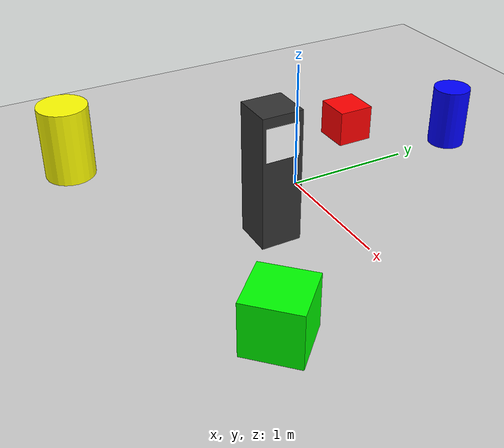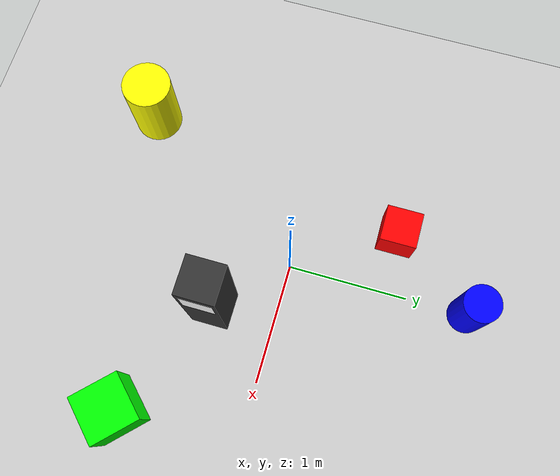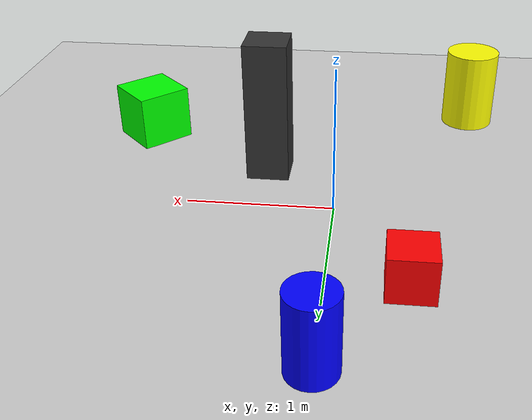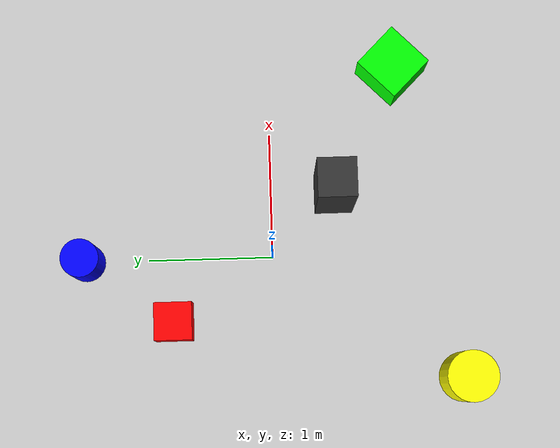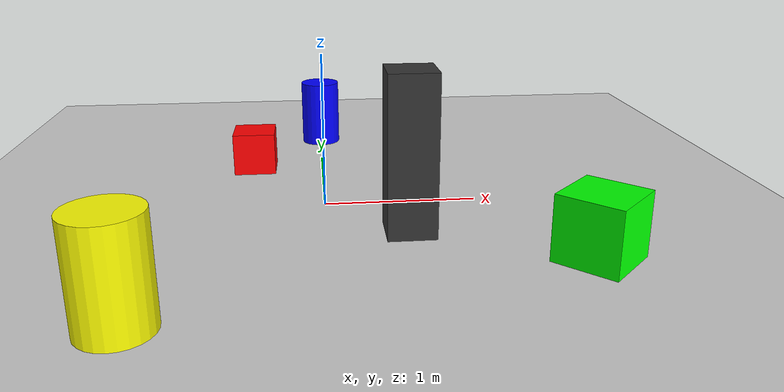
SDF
<sdf version="1.8">
 <world name="servovision_world">
  <physics name="1ms" type="ignored">
   <max_step_size>0.001</max_step_size>
   <real_time_factor>1.0</real_time_factor>
  </physics>
  <plugin filename="gz-sim-physics-system" name="gz::sim::systems::Physics"/>
  <plugin filename="gz-sim-user-commands-system" name="gz::sim::systems::UserCommands"/>
  <plugin filename="gz-sim-scene-broadcaster-system" name="gz::sim::systems::SceneBroadcaster"/>
  <plugin filename="gz-sim-sensors-system" name="gz::sim::systems::Sensors">
   <render_engine>ogre2</render_engine>
  </plugin>
  <light type="directional" name="sun">
   <pose>0 0 10 0 0 0</pose>
   <diffuse>0.8 0.8 0.8 1</diffuse>
   <specular>0.2 0.2 0.2 1</specular>
   <attenuation>
    <range>1000</range>
    <constant>0.9</constant>
    <linear>0.01</linear>
    <quadratic>0.001</quadratic>
   </attenuation>
   <direction>-0.5 0.1 -0.9</direction>
  </light>
  <model name="ground_plane">
   <static>true</static>
   <link name="link">
    <collision name="collision">
     <geometry><plane><normal>0 0 1</normal><size>100 100</size></plane></geometry>
    </collision>
    <visual name="visual">
     <geometry><plane><normal>0 0 1</normal><size>100 100</size></plane></geometry>
     <material><ambient>0.8 0.8 0.8 1</ambient><diffuse>0.8 0.8 0.8 1</diffuse></material>
    </visual>
   </link>
  </model>
  <model name="aruco_target">
   <pose>0.5 -0.5 0.5 0 0 0</pose>
   <static>true</static>
   <link name="link">
    <collision name="collision"><geometry><box><size>0.3 0.3 1.0</size></box></geometry></collision>
    <visual name="visual">
     <geometry><box><size>0.3 0.3 1.0</size></box></geometry>
     <material><ambient>0.2 0.2 0.2 1</ambient><diffuse>0.2 0.2 0.2 1</diffuse></material>
    </visual>
    <visual name="aruco_marker">
     <pose>0.151 0 0.3 0 0 0</pose>
     <geometry><box><size>0.001 0.25 0.25</size></box></geometry>
     <material>
      <ambient>1 1 1 1</ambient>
      <diffuse>1 1 1 1</diffuse>
      <specular>0.1 0.1 0.1 1</specular>
      <pbr><metal><albedo_map>model://aruco_id1_box/meshes/aruco_marker_1.png</albedo_map></metal></pbr>
     </material>
    </visual>
   </link>
  </model>
  <model name="red_cube">
   <pose>-0.5 0.8 0.15 0 0 0</pose>
   <static>true</static>
   <link name="link">
    <collision name="collision"><geometry><box><size>0.3 0.3 0.3</size></box></geometry></collision>
    <visual name="visual">
     <geometry><box><size>0.3 0.3 0.3</size></box></geometry>
     <material><ambient>1.0 0.0 0.0 1</ambient><diffuse>1.0 0.0 0.0 1</diffuse></material>
    </visual>
   </link>
  </model>
  <model name="blue_cylinder">
   <pose>0.0 1.5 0.25 0 0 0</pose>
   <static>true</static>
   <link name="link">
    <collision name="collision">
     <geometry><cylinder><radius>0.15</radius><length>0.5</length></cylinder></geometry>
    </collision>
    <visual name="visual">
     <geometry><cylinder><radius>0.15</radius><length>0.5</length></cylinder></geometry>
     <material><ambient>0.0 0.0 1.0 1</ambient><diffuse>0.0 0.0 1.0 1</diffuse></material>
    </visual>
   </link>
  </model>
  <model name="green_cube">
   <pose>1.5 -1.0 0.2 0 0 0.785</pose>
   <static>true</static>
   <link name="link">
    <collision name="collision"><geometry><box><size>0.4 0.4 0.4</size></box></geometry></collision>
    <visual name="visual">
     <geometry><box><size>0.4 0.4 0.4</size></box></geometry>
     <material><ambient>0.0 1.0 0.0 1</ambient><diffuse>0.0 1.0 0.0 1</diffuse></material>
    </visual>
   </link>
  </model>
  <model name="yellow_cylinder">
   <pose>-1.0 -1.5 0.3 0 0 0</pose>
   <static>true</static>
   <link name="link">
    <collision name="collision">
     <geometry><cylinder><radius>0.2</radius><length>0.6</length></cylinder></geometry>
    </collision>
    <visual name="visual">
     <geometry><cylinder><radius>0.2</radius><length>0.6</length></cylinder></geometry>
     <material><ambient>1.0 1.0 0.0 1</ambient><diffuse>1.0 1.0 0.0 1</diffuse></material>
    </visual>
   </link>
  </model>
 </world>
</sdf>
